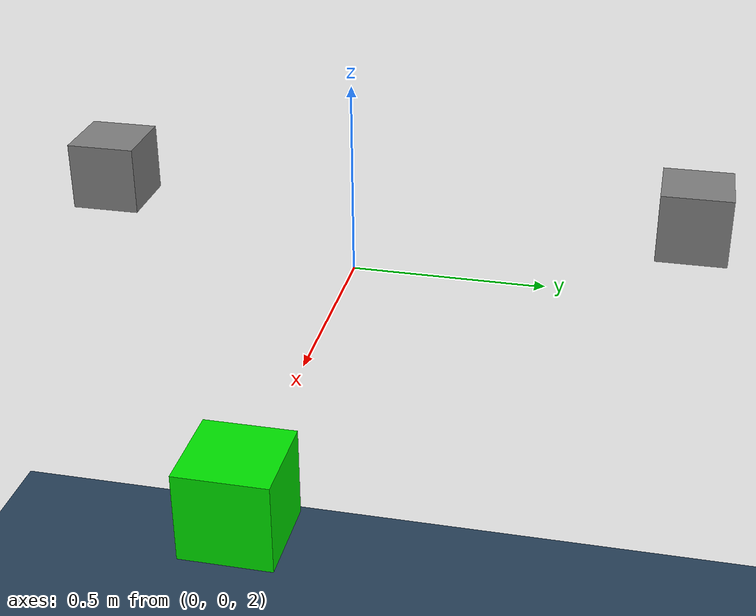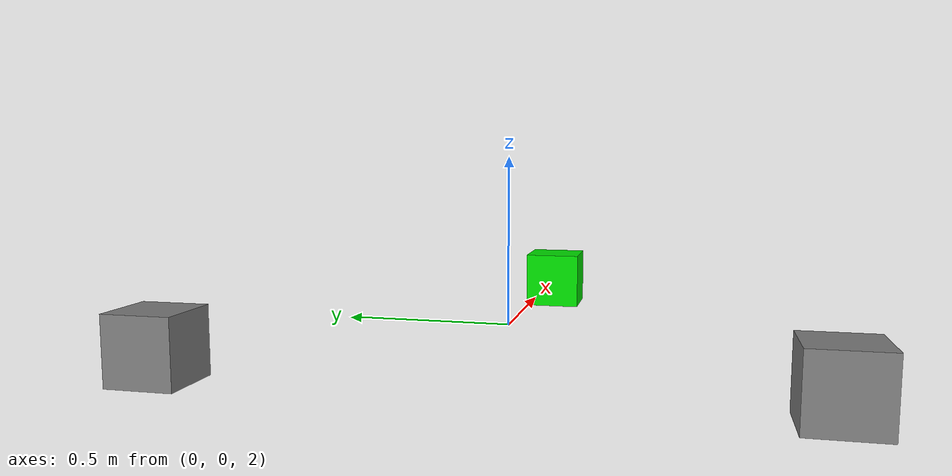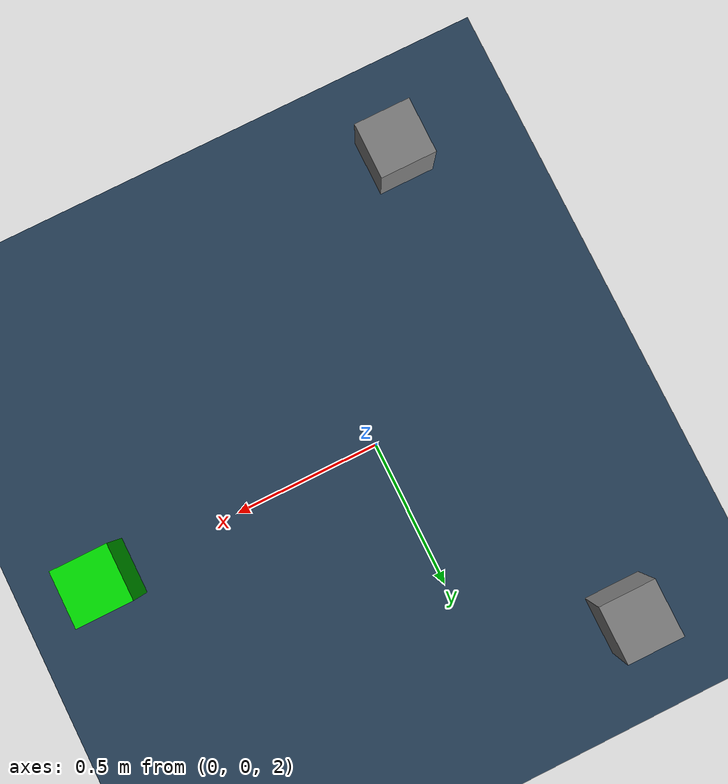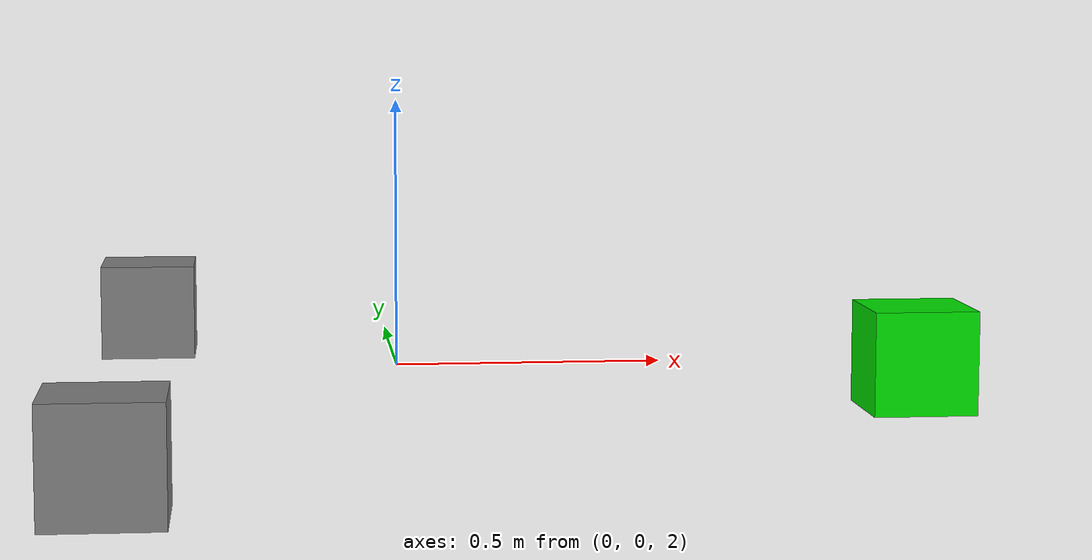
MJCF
<mujoco>
    <asset>
        <texture name="grid" type="2d" builtin="checker" width="512" height="512" rgb1=".1 .2 .3"
            rgb2=".2 .3 .4" />
        <material name="grid" texture="grid" texrepeat="1 1" texuniform="true" reflectance=".2" />
    </asset>

    <worldbody>
        <geom name="floor" size="0 0 .05" type="plane" material="grid" />
        <light diffuse=".5 .5 .5" pos="0 0 5" dir="0 0 -1" />
    </worldbody>

    <worldbody>
        <body name="cube_1" pos="1 0 2">
            <joint type="ball" pos="-1 0 0" damping="0.5"/>
            <geom type="box" size=".1 .1 .1" rgba="0 .9 0 1" />
        </body>
        <body name="cube_2_ref" pos="-0.5 0.866 2" mocap="true">
            <geom type="box" size=".1 .1 .1" rgba="0.5 0.5 0.5 1" />
        </body>
        <body name="cube_2" pos="-0.5 0.866 2">
            <freejoint />
            <geom type="box" size=".1 .1 .1" rgba=".9 0 0 1" />
        </body>
        <body name="cube_3_ref" pos="-0.5 -0.866 2" mocap="true">
            <geom type="box" size=".1 .1 .1" rgba="0.5 0.5 0.5 1" />
        </body>
        <body name="cube_3" pos="-0.5 -0.866 2">
            <freejoint />
            <geom type="box" size=".1 .1 .1" rgba=".9 0 0 1" />
        </body>
    </worldbody>

    <equality>
        <weld body1="cube_2" body2="cube_2_ref" torquescale="0.9" />
        <weld body1="cube_3" body2="cube_3_ref" torquescale="0.9" />
    </equality>

    <contact>
        <exclude body1="cube_1" body2="cube_2_ref" />
        <exclude body1="cube_2" body2="cube_2_ref" />
        <exclude body1="cube_3" body2="cube_2_ref" />
        <exclude body1="cube_1" body2="cube_3_ref" />
        <exclude body1="cube_2" body2="cube_3_ref" />
        <exclude body1="cube_3" body2="cube_3_ref" />
        <exclude body1="cube_2_ref" body2="cube_3_ref" />
    </contact>
</mujoco>
